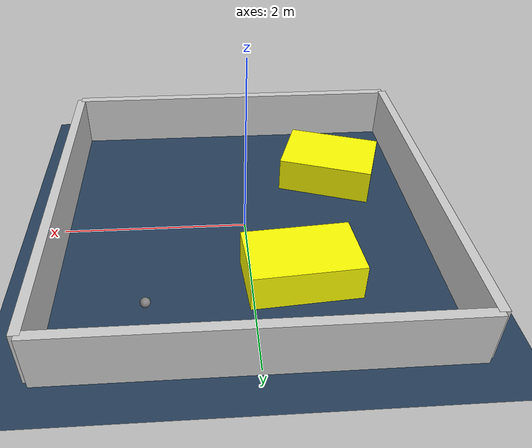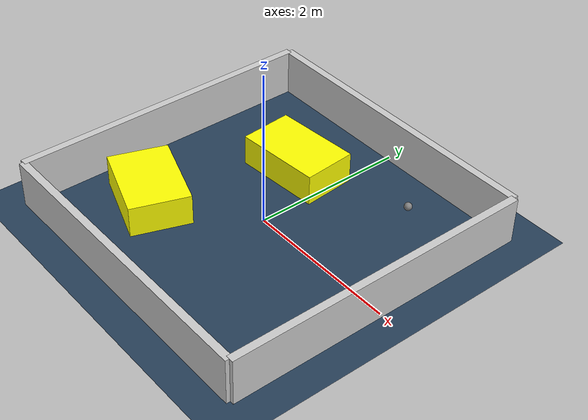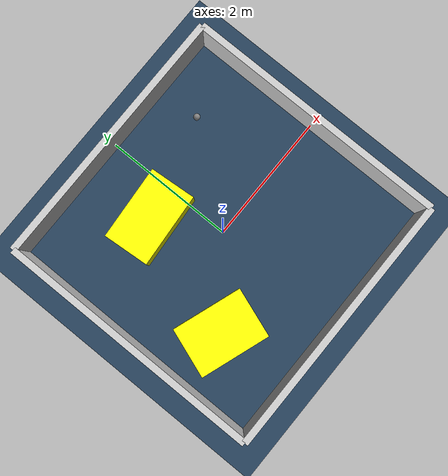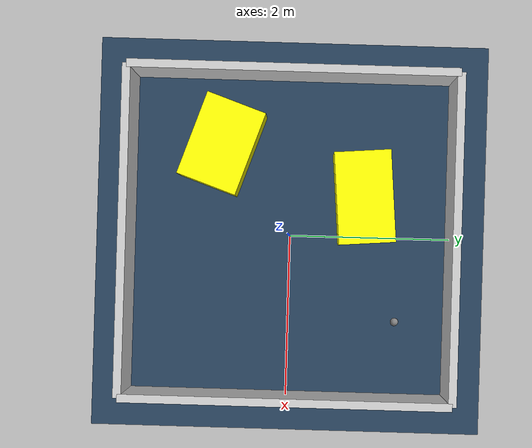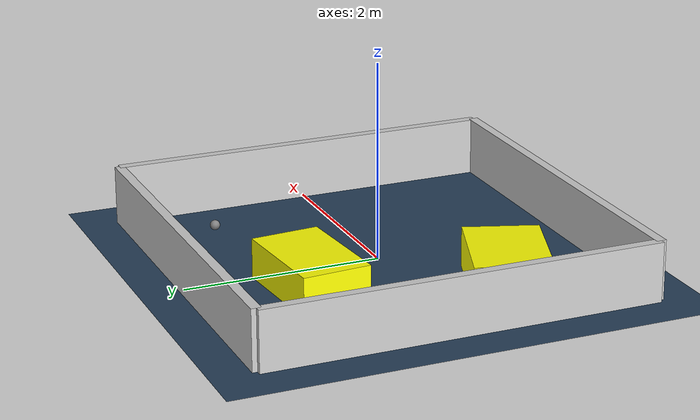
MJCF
<?xml version="1.0" ?>
<mujoco model="generated_environment">
  <option timestep="0.01" integrator="RK4" cone="elliptic"/>
  <default>
    <geom density="1"/>
  </default>
  <asset>
    <texture builtin="gradient" height="3072" rgb1="0.3 0.5 0.7" rgb2="0 0 0" type="skybox" width="512"/>
    <texture builtin="checker" height="300" mark="edge" markrgb="0.8 0.8 0.8" name="groundplane" rgb1="0.2 0.3 0.4" rgb2="0.1 0.2 0.3" type="2d" width="300"/>
    <material name="groundplane" reflectance="0.2" texrepeat="5 5" texture="groundplane" texuniform="true"/>
    <material name="robot" rgba="0.0 1.0 0.0 1"/>
  </asset>
  <worldbody>
    <light dir="0 0 -1" directional="true" pos="0 0 1.5"/>
    <geom condim="4" friction="1.0 0.005 0.001" material="groundplane" name="floor" size="0 0 0.05" type="plane"/>
    <body name="walls">
      <geom name="wall_1" condim="4" pos="-2.0 0.0 0.3" rgba="0.800000011920929 0.800000011920929 0.800000011920929 1.0" size="0.05 2.0 0.3" type="box"/>
      <geom name="wall_2" condim="4" pos="2.0 0.0 0.3" rgba="0.800000011920929 0.800000011920929 0.800000011920929 1.0" size="0.05 2.0 0.3" type="box"/>
      <geom name="wall_3" condim="4" pos="0.0 -2.0 0.3" rgba="0.800000011920929 0.800000011920929 0.800000011920929 1.0" size="2.0 0.05 0.3" type="box"/>
      <geom name="wall_4" condim="4" pos="0.0 2.0 0.3" rgba="0.800000011920929 0.800000011920929 0.800000011920929 1.0" size="2.0 0.05 0.3" type="box"/>
    </body>
    <body name="robot">
      <joint name="joint_x" type="slide" pos="0 0 0" axis="1 0 0"/>
      <joint name="joint_y" type="slide" pos="0 0 0" axis="0 1 0"/>
      <geom name="robot" type="sphere" pos="1.0296961257748034 1.3214427440346852 0.2" size="0.05" mass="5." friction="1.0 0.005 0.0001" condim="4"/>
      <site name="sensor_ball"/>
    </body>
    <body name="obstacle_1_movable">
      <geom name="obstacle_1_movable" condim="4" pos="-1.0981877863903609 -0.8628131866389074 0.2" euler="0 0 160.70110308418765" friction="1.0 0.005 0.001" rgba="1 1 0 1" size="0.5315133100162205 0.37963006988739434 0.2" type="box" mass="0.1"/>
      <joint type="free"/>
    </body>
    <body name="obstacle_2_movable">
      <geom name="obstacle_2_movable" condim="4" pos="-0.4939456606908841 0.9037936032486518 0.2" euler="0 0 4.5317415692156615" friction="1.0 0.005 0.001" rgba="1 1 0 1" size="0.5653785139679379 0.3470323202525237 0.2" type="box" mass="0.1"/>
      <joint type="free"/>
    </body>
  </worldbody>
  <actuator>
    <motor name="actuator_x" joint="joint_x" gear="1" ctrlrange="-1 1"/>
    <motor name="actuator_y" joint="joint_y" gear="1" ctrlrange="-1 1"/>
  </actuator>
</mujoco>
